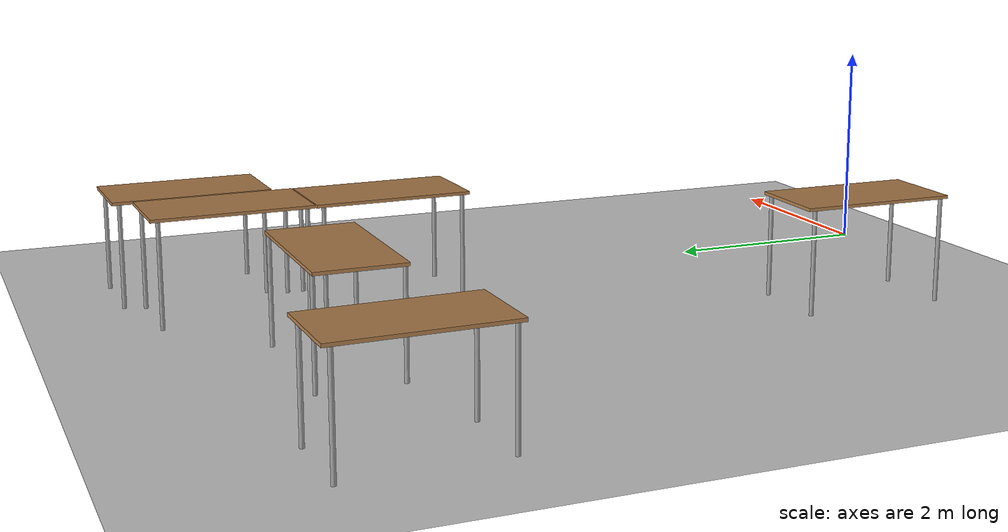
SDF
<sdf version="1.7">
 <world name="default">
  <model name="ground_plane">
   <static>1</static>
   <link name="link">
    <collision name="collision">
     <geometry><plane><normal>0 0 1</normal><size>100 100</size></plane></geometry>
     <surface>
      <contact><collide_bitmask>65535</collide_bitmask></contact>
      <friction><ode><mu>100</mu><mu2>50</mu2></ode></friction>
     </surface>
    </collision>
    <visual name="visual">
     <cast_shadows>0</cast_shadows>
     <geometry><plane><normal>0 0 1</normal><size>100 100</size></plane></geometry>
     <material>
      <script><uri>file://media/materials/scripts/gazebo.material</uri><name>Gazebo/Grey</name></script>
     </material>
    </visual>
   </link>
  </model>
  <model name="table_clone_0">
   <static>1</static>
   <link name="link">
    <collision name="surface">
     <pose>0 0 1 0 -0 0</pose>
     <geometry><box><size>1.5 0.8 0.03</size></box></geometry>
     <surface><friction><ode><mu>0.6</mu><mu2>0.6</mu2></ode></friction></surface>
    </collision>
    <visual name="visual1">
     <pose>0 0 1 0 -0 0</pose>
     <geometry><box><size>1.5 0.8 0.03</size></box></geometry>
     <material>
      <script><uri>file://media/materials/scripts/gazebo.material</uri><name>Gazebo/Wood</name></script>
     </material>
    </visual>
    <collision name="front_left_leg">
     <pose>0.68 0.38 0.5 0 -0 0</pose>
     <geometry><cylinder><radius>0.02</radius><length>1</length></cylinder></geometry>
    </collision>
    <visual name="front_left_leg">
     <pose>0.68 0.38 0.5 0 -0 0</pose>
     <geometry><cylinder><radius>0.02</radius><length>1</length></cylinder></geometry>
     <material>
      <script><uri>file://media/materials/scripts/gazebo.material</uri><name>Gazebo/Grey</name></script>
     </material>
    </visual>
    <collision name="front_right_leg">
     <pose>0.68 -0.38 0.5 0 -0 0</pose>
     <geometry><cylinder><radius>0.02</radius><length>1</length></cylinder></geometry>
    </collision>
    <visual name="front_right_leg">
     <pose>0.68 -0.38 0.5 0 -0 0</pose>
     <geometry><cylinder><radius>0.02</radius><length>1</length></cylinder></geometry>
     <material>
      <script><uri>file://media/materials/scripts/gazebo.material</uri><name>Gazebo/Grey</name></script>
     </material>
    </visual>
    <collision name="back_right_leg">
     <pose>-0.68 -0.38 0.5 0 -0 0</pose>
     <geometry><cylinder><radius>0.02</radius><length>1</length></cylinder></geometry>
    </collision>
    <visual name="back_right_leg">
     <pose>-0.68 -0.38 0.5 0 -0 0</pose>
     <geometry><cylinder><radius>0.02</radius><length>1</length></cylinder></geometry>
     <material>
      <script><uri>file://media/materials/scripts/gazebo.material</uri><name>Gazebo/Grey</name></script>
     </material>
    </visual>
    <collision name="back_left_leg">
     <pose>-0.68 0.38 0.5 0 -0 0</pose>
     <geometry><cylinder><radius>0.02</radius><length>1</length></cylinder></geometry>
    </collision>
    <visual name="back_left_leg">
     <pose>-0.68 0.38 0.5 0 -0 0</pose>
     <geometry><cylinder><radius>0.02</radius><length>1</length></cylinder></geometry>
     <material>
      <script><uri>file://media/materials/scripts/gazebo.material</uri><name>Gazebo/Grey</name></script>
     </material>
    </visual>
   </link>
   <pose>-2.21488 6.47115 0 0 -0 0</pose>
  </model>
  <model name="table_clone_0_clone_0">
   <static>1</static>
   <link name="link">
    <collision name="surface">
     <pose>0 0 1 0 -0 0</pose>
     <geometry><box><size>1.5 0.8 0.03</size></box></geometry>
     <surface><friction><ode><mu>0.6</mu><mu2>0.6</mu2></ode></friction></surface>
    </collision>
    <visual name="visual1">
     <pose>0 0 1 0 -0 0</pose>
     <geometry><box><size>1.5 0.8 0.03</size></box></geometry>
     <material>
      <script><uri>file://media/materials/scripts/gazebo.material</uri><name>Gazebo/Wood</name></script>
     </material>
    </visual>
    <collision name="front_left_leg">
     <pose>0.68 0.38 0.5 0 -0 0</pose>
     <geometry><cylinder><radius>0.02</radius><length>1</length></cylinder></geometry>
    </collision>
    <visual name="front_left_leg">
     <pose>0.68 0.38 0.5 0 -0 0</pose>
     <geometry><cylinder><radius>0.02</radius><length>1</length></cylinder></geometry>
     <material>
      <script><uri>file://media/materials/scripts/gazebo.material</uri><name>Gazebo/Grey</name></script>
     </material>
    </visual>
    <collision name="front_right_leg">
     <pose>0.68 -0.38 0.5 0 -0 0</pose>
     <geometry><cylinder><radius>0.02</radius><length>1</length></cylinder></geometry>
    </collision>
    <visual name="front_right_leg">
     <pose>0.68 -0.38 0.5 0 -0 0</pose>
     <geometry><cylinder><radius>0.02</radius><length>1</length></cylinder></geometry>
     <material>
      <script><uri>file://media/materials/scripts/gazebo.material</uri><name>Gazebo/Grey</name></script>
     </material>
    </visual>
    <collision name="back_right_leg">
     <pose>-0.68 -0.38 0.5 0 -0 0</pose>
     <geometry><cylinder><radius>0.02</radius><length>1</length></cylinder></geometry>
    </collision>
    <visual name="back_right_leg">
     <pose>-0.68 -0.38 0.5 0 -0 0</pose>
     <geometry><cylinder><radius>0.02</radius><length>1</length></cylinder></geometry>
     <material>
      <script><uri>file://media/materials/scripts/gazebo.material</uri><name>Gazebo/Grey</name></script>
     </material>
    </visual>
    <collision name="back_left_leg">
     <pose>-0.68 0.38 0.5 0 -0 0</pose>
     <geometry><cylinder><radius>0.02</radius><length>1</length></cylinder></geometry>
    </collision>
    <visual name="back_left_leg">
     <pose>-0.68 0.38 0.5 0 -0 0</pose>
     <geometry><cylinder><radius>0.02</radius><length>1</length></cylinder></geometry>
     <material>
      <script><uri>file://media/materials/scripts/gazebo.material</uri><name>Gazebo/Grey</name></script>
     </material>
    </visual>
   </link>
   <pose>-4.33016 6.56363 0 0 -0 1.58908</pose>
  </model>
  <model name="table_clone_0_clone_clone">
   <static>1</static>
   <link name="link">
    <collision name="surface">
     <pose>0 0 1 0 -0 0</pose>
     <geometry><box><size>1.5 0.8 0.03</size></box></geometry>
     <surface><friction><ode><mu>0.6</mu><mu2>0.6</mu2></ode></friction></surface>
    </collision>
    <visual name="visual1">
     <pose>0 0 1 0 -0 0</pose>
     <geometry><box><size>1.5 0.8 0.03</size></box></geometry>
     <material>
      <script><uri>file://media/materials/scripts/gazebo.material</uri><name>Gazebo/Wood</name></script>
     </material>
    </visual>
    <collision name="front_left_leg">
     <pose>0.68 0.38 0.5 0 -0 0</pose>
     <geometry><cylinder><radius>0.02</radius><length>1</length></cylinder></geometry>
    </collision>
    <visual name="front_left_leg">
     <pose>0.68 0.38 0.5 0 -0 0</pose>
     <geometry><cylinder><radius>0.02</radius><length>1</length></cylinder></geometry>
     <material>
      <script><uri>file://media/materials/scripts/gazebo.material</uri><name>Gazebo/Grey</name></script>
     </material>
    </visual>
    <collision name="front_right_leg">
     <pose>0.68 -0.38 0.5 0 -0 0</pose>
     <geometry><cylinder><radius>0.02</radius><length>1</length></cylinder></geometry>
    </collision>
    <visual name="front_right_leg">
     <pose>0.68 -0.38 0.5 0 -0 0</pose>
     <geometry><cylinder><radius>0.02</radius><length>1</length></cylinder></geometry>
     <material>
      <script><uri>file://media/materials/scripts/gazebo.material</uri><name>Gazebo/Grey</name></script>
     </material>
    </visual>
    <collision name="back_right_leg">
     <pose>-0.68 -0.38 0.5 0 -0 0</pose>
     <geometry><cylinder><radius>0.02</radius><length>1</length></cylinder></geometry>
    </collision>
    <visual name="back_right_leg">
     <pose>-0.68 -0.38 0.5 0 -0 0</pose>
     <geometry><cylinder><radius>0.02</radius><length>1</length></cylinder></geometry>
     <material>
      <script><uri>file://media/materials/scripts/gazebo.material</uri><name>Gazebo/Grey</name></script>
     </material>
    </visual>
    <collision name="back_left_leg">
     <pose>-0.68 0.38 0.5 0 -0 0</pose>
     <geometry><cylinder><radius>0.02</radius><length>1</length></cylinder></geometry>
    </collision>
    <visual name="back_left_leg">
     <pose>-0.68 0.38 0.5 0 -0 0</pose>
     <geometry><cylinder><radius>0.02</radius><length>1</length></cylinder></geometry>
     <material>
      <script><uri>file://media/materials/scripts/gazebo.material</uri><name>Gazebo/Grey</name></script>
     </material>
    </visual>
   </link>
   <pose>-0.295656 6.95966 0 0 -0 1.58908</pose>
  </model>
  <model name="table_clone_0_clone_clone_0">
   <static>1</static>
   <link name="link">
    <collision name="surface">
     <pose>0 0 1 0 -0 0</pose>
     <geometry><box><size>1.5 0.8 0.03</size></box></geometry>
     <surface><friction><ode><mu>0.6</mu><mu2>0.6</mu2></ode></friction></surface>
    </collision>
    <visual name="visual1">
     <pose>0 0 1 0 -0 0</pose>
     <geometry><box><size>1.5 0.8 0.03</size></box></geometry>
     <material>
      <script><uri>file://media/materials/scripts/gazebo.material</uri><name>Gazebo/Wood</name></script>
     </material>
    </visual>
    <collision name="front_left_leg">
     <pose>0.68 0.38 0.5 0 -0 0</pose>
     <geometry><cylinder><radius>0.02</radius><length>1</length></cylinder></geometry>
    </collision>
    <visual name="front_left_leg">
     <pose>0.68 0.38 0.5 0 -0 0</pose>
     <geometry><cylinder><radius>0.02</radius><length>1</length></cylinder></geometry>
     <material>
      <script><uri>file://media/materials/scripts/gazebo.material</uri><name>Gazebo/Grey</name></script>
     </material>
    </visual>
    <collision name="front_right_leg">
     <pose>0.68 -0.38 0.5 0 -0 0</pose>
     <geometry><cylinder><radius>0.02</radius><length>1</length></cylinder></geometry>
    </collision>
    <visual name="front_right_leg">
     <pose>0.68 -0.38 0.5 0 -0 0</pose>
     <geometry><cylinder><radius>0.02</radius><length>1</length></cylinder></geometry>
     <material>
      <script><uri>file://media/materials/scripts/gazebo.material</uri><name>Gazebo/Grey</name></script>
     </material>
    </visual>
    <collision name="back_right_leg">
     <pose>-0.68 -0.38 0.5 0 -0 0</pose>
     <geometry><cylinder><radius>0.02</radius><length>1</length></cylinder></geometry>
    </collision>
    <visual name="back_right_leg">
     <pose>-0.68 -0.38 0.5 0 -0 0</pose>
     <geometry><cylinder><radius>0.02</radius><length>1</length></cylinder></geometry>
     <material>
      <script><uri>file://media/materials/scripts/gazebo.material</uri><name>Gazebo/Grey</name></script>
     </material>
    </visual>
    <collision name="back_left_leg">
     <pose>-0.68 0.38 0.5 0 -0 0</pose>
     <geometry><cylinder><radius>0.02</radius><length>1</length></cylinder></geometry>
    </collision>
    <visual name="back_left_leg">
     <pose>-0.68 0.38 0.5 0 -0 0</pose>
     <geometry><cylinder><radius>0.02</radius><length>1</length></cylinder></geometry>
     <material>
      <script><uri>file://media/materials/scripts/gazebo.material</uri><name>Gazebo/Grey</name></script>
     </material>
    </visual>
   </link>
   <pose>-0.274415 5.44749 0 0 -0 1.58908</pose>
  </model>
  <model name="table_clone_0_clone_clone_clone">
   <static>1</static>
   <link name="link">
    <collision name="surface">
     <pose>0 0 1 0 -0 0</pose>
     <geometry><box><size>1.5 0.8 0.03</size></box></geometry>
     <surface><friction><ode><mu>0.6</mu><mu2>0.6</mu2></ode></friction></surface>
    </collision>
    <visual name="visual1">
     <pose>0 0 1 0 -0 0</pose>
     <geometry><box><size>1.5 0.8 0.03</size></box></geometry>
     <material>
      <script><uri>file://media/materials/scripts/gazebo.material</uri><name>Gazebo/Wood</name></script>
     </material>
    </visual>
    <collision name="front_left_leg">
     <pose>0.68 0.38 0.5 0 -0 0</pose>
     <geometry><cylinder><radius>0.02</radius><length>1</length></cylinder></geometry>
    </collision>
    <visual name="front_left_leg">
     <pose>0.68 0.38 0.5 0 -0 0</pose>
     <geometry><cylinder><radius>0.02</radius><length>1</length></cylinder></geometry>
     <material>
      <script><uri>file://media/materials/scripts/gazebo.material</uri><name>Gazebo/Grey</name></script>
     </material>
    </visual>
    <collision name="front_right_leg">
     <pose>0.68 -0.38 0.5 0 -0 0</pose>
     <geometry><cylinder><radius>0.02</radius><length>1</length></cylinder></geometry>
    </collision>
    <visual name="front_right_leg">
     <pose>0.68 -0.38 0.5 0 -0 0</pose>
     <geometry><cylinder><radius>0.02</radius><length>1</length></cylinder></geometry>
     <material>
      <script><uri>file://media/materials/scripts/gazebo.material</uri><name>Gazebo/Grey</name></script>
     </material>
    </visual>
    <collision name="back_right_leg">
     <pose>-0.68 -0.38 0.5 0 -0 0</pose>
     <geometry><cylinder><radius>0.02</radius><length>1</length></cylinder></geometry>
    </collision>
    <visual name="back_right_leg">
     <pose>-0.68 -0.38 0.5 0 -0 0</pose>
     <geometry><cylinder><radius>0.02</radius><length>1</length></cylinder></geometry>
     <material>
      <script><uri>file://media/materials/scripts/gazebo.material</uri><name>Gazebo/Grey</name></script>
     </material>
    </visual>
    <collision name="back_left_leg">
     <pose>-0.68 0.38 0.5 0 -0 0</pose>
     <geometry><cylinder><radius>0.02</radius><length>1</length></cylinder></geometry>
    </collision>
    <visual name="back_left_leg">
     <pose>-0.68 0.38 0.5 0 -0 0</pose>
     <geometry><cylinder><radius>0.02</radius><length>1</length></cylinder></geometry>
     <material>
      <script><uri>file://media/materials/scripts/gazebo.material</uri><name>Gazebo/Grey</name></script>
     </material>
    </visual>
   </link>
   <pose>0.539492 7.15927 0 0 -0 1.58908</pose>
  </model>
  <model name="table_clone_2_clone">
   <static>1</static>
   <link name="link">
    <collision name="surface">
     <pose>0 0 1 0 -0 0</pose>
     <geometry><box><size>1.5 0.8 0.03</size></box></geometry>
     <surface><friction><ode><mu>0.6</mu><mu2>0.6</mu2></ode></friction></surface>
    </collision>
    <visual name="visual1">
     <pose>0 0 1 0 -0 0</pose>
     <geometry><box><size>1.5 0.8 0.03</size></box></geometry>
     <material>
      <script><uri>file://media/materials/scripts/gazebo.material</uri><name>Gazebo/Wood</name></script>
     </material>
    </visual>
    <collision name="front_left_leg">
     <pose>0.68 0.38 0.5 0 -0 0</pose>
     <geometry><cylinder><radius>0.02</radius><length>1</length></cylinder></geometry>
    </collision>
    <visual name="front_left_leg">
     <pose>0.68 0.38 0.5 0 -0 0</pose>
     <geometry><cylinder><radius>0.02</radius><length>1</length></cylinder></geometry>
     <material>
      <script><uri>file://media/materials/scripts/gazebo.material</uri><name>Gazebo/Grey</name></script>
     </material>
    </visual>
    <collision name="front_right_leg">
     <pose>0.68 -0.38 0.5 0 -0 0</pose>
     <geometry><cylinder><radius>0.02</radius><length>1</length></cylinder></geometry>
    </collision>
    <visual name="front_right_leg">
     <pose>0.68 -0.38 0.5 0 -0 0</pose>
     <geometry><cylinder><radius>0.02</radius><length>1</length></cylinder></geometry>
     <material>
      <script><uri>file://media/materials/scripts/gazebo.material</uri><name>Gazebo/Grey</name></script>
     </material>
    </visual>
    <collision name="back_right_leg">
     <pose>-0.68 -0.38 0.5 0 -0 0</pose>
     <geometry><cylinder><radius>0.02</radius><length>1</length></cylinder></geometry>
    </collision>
    <visual name="back_right_leg">
     <pose>-0.68 -0.38 0.5 0 -0 0</pose>
     <geometry><cylinder><radius>0.02</radius><length>1</length></cylinder></geometry>
     <material>
      <script><uri>file://media/materials/scripts/gazebo.material</uri><name>Gazebo/Grey</name></script>
     </material>
    </visual>
    <collision name="back_left_leg">
     <pose>-0.68 0.38 0.5 0 -0 0</pose>
     <geometry><cylinder><radius>0.02</radius><length>1</length></cylinder></geometry>
    </collision>
    <visual name="back_left_leg">
     <pose>-0.68 0.38 0.5 0 -0 0</pose>
     <geometry><cylinder><radius>0.02</radius><length>1</length></cylinder></geometry>
     <material>
      <script><uri>file://media/materials/scripts/gazebo.material</uri><name>Gazebo/Grey</name></script>
     </material>
    </visual>
   </link>
   <pose>-2.14415 1.36821 0 0 -0 1.55913</pose>
  </model>
  <model name="cardboard_box_2">
   <pose>-4.88373 2.96722 -2.10769e+06 0 -0 0</pose>
   <link name="link">
    <pose>-4.88373 2.96722 0.149 0 -0 0</pose>
    <inertial>
     <inertia><ixx>1</ixx><ixy>0</ixy><ixz>0</ixz><iyy>1</iyy><iyz>0</iyz><izz>1</izz></inertia>
     <mass>1</mass>
    </inertial>
    <velocity>0 0 0 0 -0 0</velocity>
    <acceleration>0 -1.9e-05 0 0.000128 2e-06 0</acceleration>
    <wrench>1e-06 -3.8e-05 1e-06 0 -0 0</wrench>
   </link>
   <scale>1 1 1</scale>
  </model>
  <model name="cardboard_box_3">
   <pose>-0.0158 3.98725 -2.10769e+06 2e-06 -2e-06 -0</pose>
   <link name="link">
    <pose>-0.0158 3.98725 0.14951 2e-06 -2e-06 -0</pose>
    <inertial>
     <inertia><ixx>1</ixx><ixy>0</ixy><ixz>0</ixz><iyy>1</iyy><iyz>0</iyz><izz>1</izz></inertia>
     <mass>1</mass>
    </inertial>
    <velocity>0 0 0 0 -0 0</velocity>
    <acceleration>0 1.1e-05 0 -7.2e-05 1e-06 0</acceleration>
    <wrench>0 2.2e-05 0 0 -0 0</wrench>
   </link>
   <scale>1 1 1</scale>
  </model>
 </world>
</sdf>
